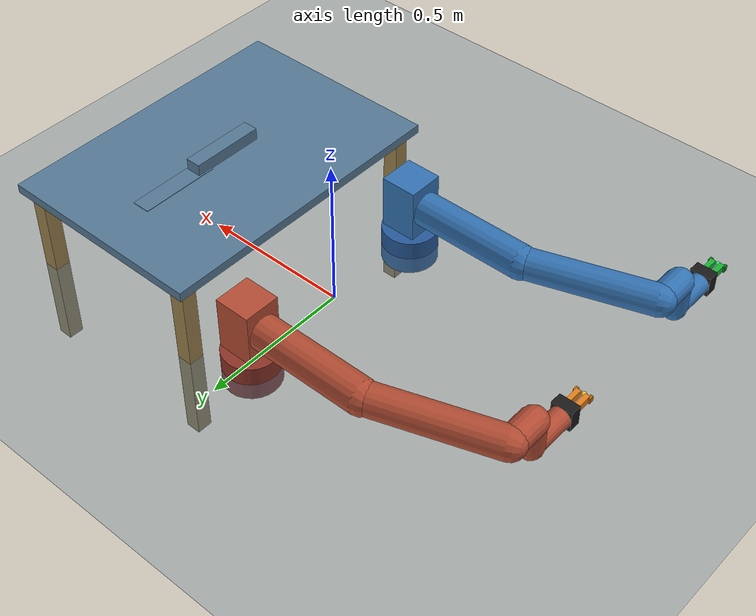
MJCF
<mujoco model="lab6_dual_arm">

  <compiler angle="radian" autolimits="true"/>
  <option timestep="0.001" gravity="0 0 -9.81" integrator="RK4"/>

  <default>
    <joint damping="1.0" armature="0.01" limited="true"/>
    <geom rgba="0.33 0.47 0.58 1" density="800" contype="1" conaffinity="1"/>
    <motor ctrllimited="true" ctrlrange="-180 180"/>
  </default>

  <statistic center="0.45 0 0.5" extent="1.6"/>

  <visual>
    <headlight diffuse="0.6 0.6 0.6" ambient="0.3 0.3 0.3" specular="0 0 0"/>
    <rgba haze="0.15 0.25 0.35 1"/>
    <global azimuth="130" elevation="-20" offwidth="1920" offheight="1080"/>
  </visual>

  <asset>
    <texture type="skybox" builtin="gradient"
             rgb1="0.3 0.5 0.7" rgb2="0 0 0"
             width="512" height="3072"/>
    <texture type="2d" name="groundplane" builtin="checker" mark="edge"
             rgb1="0.2 0.3 0.4" rgb2="0.1 0.2 0.3" markrgb="0.8 0.8 0.8"
             width="300" height="300"/>
    <material name="groundplane" texture="groundplane" texuniform="true"
              texrepeat="5 5" reflectance="0.2"/>
    <material name="table_mat"  rgba="0.75 0.60 0.40 1"/>
    <material name="bar_mat"    rgba="0.85 0.30 0.10 1"/>
    <material name="target_mat" rgba="0.10 0.80 0.20 0.4"/>
    <material name="left_arm_mat"  rgba="0.20 0.45 0.70 1"/>
    <material name="right_arm_mat" rgba="0.70 0.30 0.20 1"/>
  </asset>

  <worldbody>
    <light pos="0 0 3.0" dir="0 0 -1" directional="true"/>
    <light pos="1.5 -1.5 2.5" dir="-0.5 0.5 -1" directional="false"/>
    <geom name="floor" size="0 0 0.05" type="plane" material="groundplane"/>

    <body name="left_base" pos="0 -0.35 0">
      <geom name="left_base_geom" type="cylinder" size="0.09 0.06"
            rgba="0.15 0.35 0.60 1"/>
      <body name="left_shoulder" pos="0 0 0.1625">
        <joint name="left_shoulder_pan_joint" axis="0 0 1"
               range="-6.28318530718 6.28318530718"/>
        <geom name="left_shoulder_geom" type="box" size="0.06 0.06 0.09"
              rgba="0.20 0.45 0.70 1"/>
        <body name="left_upper_arm" pos="0 0 0" euler="1.57079632679 0 0">
          <joint name="left_shoulder_lift_joint" axis="0 0 1"
                 range="-6.28318530718 6.28318530718"/>
          <geom name="left_upper_arm_geom" type="capsule"
                fromto="0 0 0 -0.425 0 0" size="0.055" rgba="0.20 0.45 0.70 1"/>
          <body name="left_forearm" pos="-0.425 0 0">
            <joint name="left_elbow_joint" axis="0 0 1"
                   range="-6.28318530718 6.28318530718"/>
            <geom name="left_forearm_geom" type="capsule"
                  fromto="0 0 0 -0.3922 0 0.1333" size="0.050"
                  rgba="0.20 0.45 0.70 1"/>
            <body name="left_wrist_1" pos="-0.3922 0 0.1333">
              <joint name="left_wrist_1_joint" axis="0 0 1"
                     range="-6.28318530718 6.28318530718"/>
              <geom name="left_wrist_1_geom" type="capsule"
                    fromto="0 0 0 0 0 0.0997" size="0.045"
                    rgba="0.20 0.45 0.70 1"/>
              <body name="left_wrist_2" pos="0 0 0.0997"
                    euler="1.57079632679 0 0">
                <joint name="left_wrist_2_joint" axis="0 0 1"
                       range="-6.28318530718 6.28318530718"/>
                <geom name="left_wrist_2_geom" type="capsule"
                      fromto="0 0 0 0 0 0.0996" size="0.040"
                      rgba="0.20 0.45 0.70 1"/>
                <body name="left_wrist_3" pos="0 0 0.0996"
                      euler="-1.57079632679 0 0">
                  <joint name="left_wrist_3_joint" axis="0 0 1"
                         range="-6.28318530718 6.28318530718"/>
                  <geom name="left_wrist_3_geom" type="capsule"
                        fromto="0 0 0 0 0 0.135" size="0.035"
                        rgba="0.20 0.45 0.70 1"/>

                  <!-- tool0 flange -->
                  <body name="left_tool0" pos="0 0 0.135">
                    <site name="left_tool_site" pos="0 0 0" size="0.010"
                          rgba="0.2 0.6 1 1"/>

                    <!-- Gripper adapter plate — rotated 90° about Z so fingers close in world X -->
                    <body name="left_gripper_base" pos="0 0 0.020" euler="0 0 1.5708">
                      <geom name="left_gripper_adapter" type="box"
                            size="0.035 0.035 0.020"
                            rgba="0.10 0.10 0.10 1" mass="0.08"/>

                      <!-- Left finger of left arm -->
                      <body name="left_left_finger" pos="0 0.015 0.060">
                        <joint name="left_left_finger_joint" type="slide"
                               axis="0 1 0" range="0 0.030"
                               damping="2.0" armature="0.0001"/>
                        <geom name="left_left_finger_geom" type="box"
                              size="0.013 0.008 0.025"
                              rgba="0.1 0.7 0.2 1" mass="0.02"/>
                        <geom name="left_left_pad" type="box"
                              size="0.010 0.005 0.008"
                              pos="0 0.009 0.025"
                              friction="1.5 0.005 0.0001"
                              solimp="0.99 0.99 0.001"
                              solref="0.002 1"
                              condim="4"
                              rgba="0.05 0.5 0.1 1"
                              mass="0.005"/>
                      </body>

                      <!-- Right finger of left arm -->
                      <body name="left_right_finger" pos="0 -0.015 0.060">
                        <joint name="left_right_finger_joint" type="slide"
                               axis="0 -1 0" range="0 0.030"
                               damping="2.0" armature="0.0001"/>
                        <geom name="left_right_finger_geom" type="box"
                              size="0.013 0.008 0.025"
                              rgba="0.1 0.7 0.2 1" mass="0.02"/>
                        <geom name="left_right_pad" type="box"
                              size="0.010 0.005 0.008"
                              pos="0 -0.009 0.025"
                              friction="1.5 0.005 0.0001"
                              solimp="0.99 0.99 0.001"
                              solref="0.002 1"
                              condim="4"
                              rgba="0.05 0.5 0.1 1"
                              mass="0.005"/>
                      </body>

                      <!-- Fingertip center site for IK -->
                      <site name="left_gripper_site" pos="0 0 0.090"
                            size="0.008" rgba="0.2 1 0.5 1"/>
                    </body>
                  </body>
                </body>
              </body>
            </body>
          </body>
        </body>
      </body>
    </body>

    <body name="right_base" pos="0 0.35 0">
      <geom name="right_base_geom" type="cylinder" size="0.09 0.06"
            rgba="0.55 0.20 0.15 1"/>
      <body name="right_shoulder" pos="0 0 0.1625">
        <joint name="right_shoulder_pan_joint" axis="0 0 1"
               range="-6.28318530718 6.28318530718"/>
        <geom name="right_shoulder_geom" type="box" size="0.06 0.06 0.09"
              rgba="0.70 0.30 0.20 1"/>
        <body name="right_upper_arm" pos="0 0 0" euler="1.57079632679 0 0">
          <joint name="right_shoulder_lift_joint" axis="0 0 1"
                 range="-6.28318530718 6.28318530718"/>
          <geom name="right_upper_arm_geom" type="capsule"
                fromto="0 0 0 -0.425 0 0" size="0.055"
                rgba="0.70 0.30 0.20 1"/>
          <body name="right_forearm" pos="-0.425 0 0">
            <joint name="right_elbow_joint" axis="0 0 1"
                   range="-6.28318530718 6.28318530718"/>
            <geom name="right_forearm_geom" type="capsule"
                  fromto="0 0 0 -0.3922 0 0.1333" size="0.050"
                  rgba="0.70 0.30 0.20 1"/>
            <body name="right_wrist_1" pos="-0.3922 0 0.1333">
              <joint name="right_wrist_1_joint" axis="0 0 1"
                     range="-6.28318530718 6.28318530718"/>
              <geom name="right_wrist_1_geom" type="capsule"
                    fromto="0 0 0 0 0 0.0997" size="0.045"
                    rgba="0.70 0.30 0.20 1"/>
              <body name="right_wrist_2" pos="0 0 0.0997"
                    euler="1.57079632679 0 0">
                <joint name="right_wrist_2_joint" axis="0 0 1"
                       range="-6.28318530718 6.28318530718"/>
                <geom name="right_wrist_2_geom" type="capsule"
                      fromto="0 0 0 0 0 0.0996" size="0.040"
                      rgba="0.70 0.30 0.20 1"/>
                <body name="right_wrist_3" pos="0 0 0.0996"
                      euler="-1.57079632679 0 0">
                  <joint name="right_wrist_3_joint" axis="0 0 1"
                         range="-6.28318530718 6.28318530718"/>
                  <geom name="right_wrist_3_geom" type="capsule"
                        fromto="0 0 0 0 0 0.135" size="0.035"
                        rgba="0.70 0.30 0.20 1"/>

                  <!-- tool0 flange -->
                  <body name="right_tool0" pos="0 0 0.135">
                    <site name="right_tool_site" pos="0 0 0" size="0.010"
                          rgba="1 0.4 0.2 1"/>

                    <!-- Gripper adapter plate — rotated 90° about Z so fingers close in world X -->
                    <body name="right_gripper_base" pos="0 0 0.020" euler="0 0 1.5708">
                      <geom name="right_gripper_adapter" type="box"
                            size="0.035 0.035 0.020"
                            rgba="0.10 0.10 0.10 1" mass="0.08"/>

                      <!-- Left finger of right arm -->
                      <body name="right_left_finger" pos="0 0.015 0.060">
                        <joint name="right_left_finger_joint" type="slide"
                               axis="0 1 0" range="0 0.030"
                               damping="2.0" armature="0.0001"/>
                        <geom name="right_left_finger_geom" type="box"
                              size="0.013 0.008 0.025"
                              rgba="0.9 0.5 0.1 1" mass="0.02"/>
                        <geom name="right_left_pad" type="box"
                              size="0.010 0.005 0.008"
                              pos="0 0.009 0.025"
                              friction="1.5 0.005 0.0001"
                              solimp="0.99 0.99 0.001"
                              solref="0.002 1"
                              condim="4"
                              rgba="0.7 0.4 0.05 1"
                              mass="0.005"/>
                      </body>

                      <!-- Right finger of right arm -->
                      <body name="right_right_finger" pos="0 -0.015 0.060">
                        <joint name="right_right_finger_joint" type="slide"
                               axis="0 -1 0" range="0 0.030"
                               damping="2.0" armature="0.0001"/>
                        <geom name="right_right_finger_geom" type="box"
                              size="0.013 0.008 0.025"
                              rgba="0.9 0.5 0.1 1" mass="0.02"/>
                        <geom name="right_right_pad" type="box"
                              size="0.010 0.005 0.008"
                              pos="0 -0.009 0.025"
                              friction="1.5 0.005 0.0001"
                              solimp="0.99 0.99 0.001"
                              solref="0.002 1"
                              condim="4"
                              rgba="0.7 0.4 0.05 1"
                              mass="0.005"/>
                      </body>

                      <!-- Fingertip center site for IK -->
                      <site name="right_gripper_site" pos="0 0 0.090"
                            size="0.008" rgba="1 0.8 0.2 1"/>
                    </body>
                  </body>
                </body>
              </body>
            </body>
          </body>
        </body>
      </body>
    </body>

    <!-- =====================================================================
         TABLE  (surface at z = 0.315)
         ===================================================================== -->
    <body name="table" pos="0.45 0 0.300">
      <geom name="table_top" type="box" size="0.35 0.50 0.015"
            material="table_mat" contype="1" conaffinity="1"
            friction="0.8 0.005 0.0001"/>
      <geom name="table_leg_fl" type="box" size="0.025 0.025 0.300"
            pos="-0.30  0.45 -0.300" rgba="0.6 0.5 0.3 1"/>
      <geom name="table_leg_fr" type="box" size="0.025 0.025 0.300"
            pos="-0.30 -0.45 -0.300" rgba="0.6 0.5 0.3 1"/>
      <geom name="table_leg_bl" type="box" size="0.025 0.025 0.300"
            pos=" 0.30  0.45 -0.300" rgba="0.6 0.5 0.3 1"/>
      <geom name="table_leg_br" type="box" size="0.025 0.025 0.300"
            pos=" 0.30 -0.45 -0.300" rgba="0.6 0.5 0.3 1"/>
    </body>

    <body name="carry_bar" pos="0.45 0 0.335">
      <freejoint name="bar_joint"/>
      <geom name="bar_geom" type="box"
            size="0.025 0.12 0.020"
            material="bar_mat"
            mass="0.60"
            friction="1.5 0.005 0.0001"
            solimp="0.99 0.99 0.001"
            solref="0.002 1"
            condim="4"
            contype="1" conaffinity="1"/>
    </body>

    <!-- Target pad: visual marker for place position (matches Y-oriented bar) -->
    <body name="target_pad" pos="0.45 0.20 0.316">
      <geom name="target_geom" type="box"
            size="0.030 0.13 0.001"
            material="target_mat"
            contype="0" conaffinity="0"/>
    </body>

  </worldbody>

  <!-- Mirror finger joints for each arm -->
  <equality>
    <joint name="left_finger_mirror"
           joint1="left_left_finger_joint"
           joint2="left_right_finger_joint"
           polycoef="0 1 0 0 0"/>
    <joint name="right_finger_mirror"
           joint1="right_left_finger_joint"
           joint2="right_right_finger_joint"
           polycoef="0 1 0 0 0"/>
  </equality>

  <actuator>
    <!-- Left arm torque-controlled motors (ctrl[0-5]) -->
    <motor name="left_motor1" joint="left_shoulder_pan_joint"/>
    <motor name="left_motor2" joint="left_shoulder_lift_joint"/>
    <motor name="left_motor3" joint="left_elbow_joint"/>
    <motor name="left_motor4" joint="left_wrist_1_joint"/>
    <motor name="left_motor5" joint="left_wrist_2_joint"/>
    <motor name="left_motor6" joint="left_wrist_3_joint"/>
    <!-- Left gripper position actuator (ctrl[6]) -->
    <position name="left_gripper" joint="left_left_finger_joint"
              kp="200" ctrllimited="true" ctrlrange="0 0.030"/>

    <!-- Right arm torque-controlled motors (ctrl[7-12]) -->
    <motor name="right_motor1" joint="right_shoulder_pan_joint"/>
    <motor name="right_motor2" joint="right_shoulder_lift_joint"/>
    <motor name="right_motor3" joint="right_elbow_joint"/>
    <motor name="right_motor4" joint="right_wrist_1_joint"/>
    <motor name="right_motor5" joint="right_wrist_2_joint"/>
    <motor name="right_motor6" joint="right_wrist_3_joint"/>
    <!-- Right gripper position actuator (ctrl[13]) -->
    <position name="right_gripper" joint="right_left_finger_joint"
              kp="200" ctrllimited="true" ctrlrange="0 0.030"/>
  </actuator>

</mujoco>
